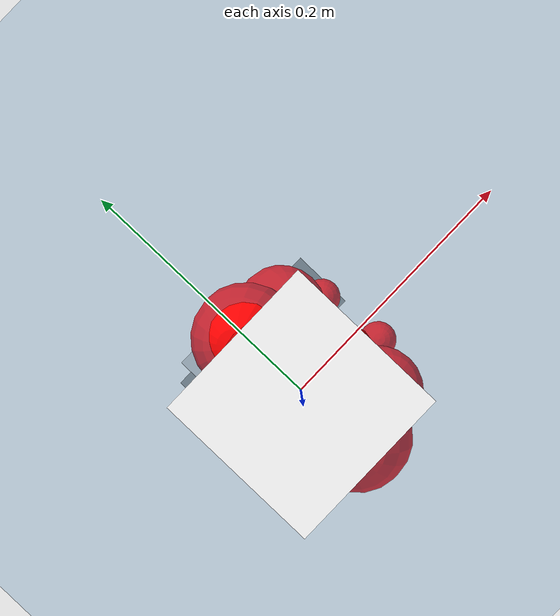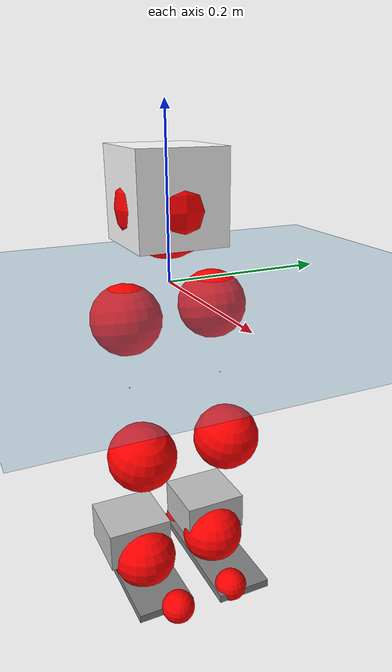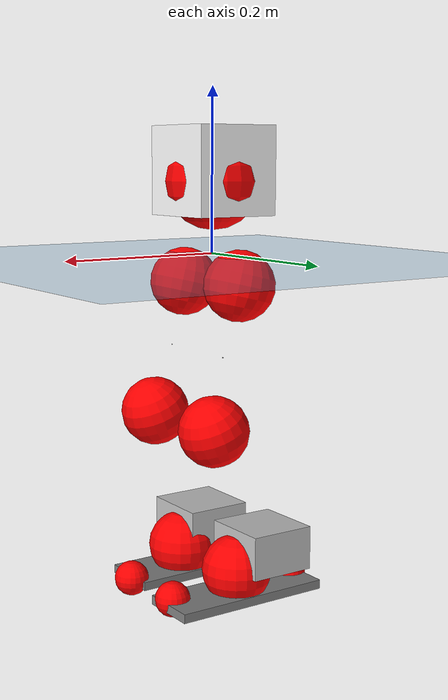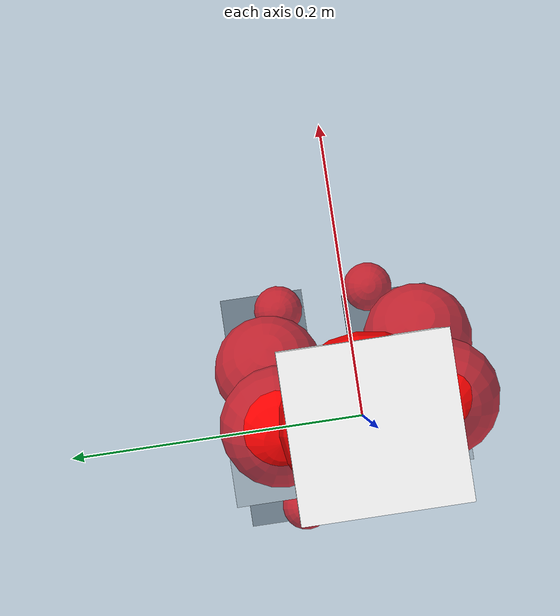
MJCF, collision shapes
<mujoco model="pi_12dof_release_v1">
  <compiler angle="radian" assetdir="assets" balanceinertia="true" inertiafromgeom="false"/>

  <option timestep="0.005" density="1.2" viscosity="2e-05"/>

  <size nkey="1"/>

  <visual>
    <quality shadowsize="8192"/>
    <map shadowclip="0.5"/>
  </visual>

  <default>
    <default class="/">
      <joint armature="0.01" damping="0.01" frictionloss="0.01"/>
      <geom contype="0" conaffinity="0" group="1" solref="-1000 -80"/>
      <site size="0.01 0.005 0.005" group="5"/>
      <general forcelimited="true" biastype="affine" gainprm="20" biasprm="0 -20 -0.5"/>
      <default class="foot">
        <geom size="0.0845 0.036 0.005" type="box" condim="6" group="4" priority="1" friction="0.9 0.2 0.2" solimp="0.015 1 0.005"/>
      </default>
      <default class="reward_collision_sphere">
        <geom group="5" rgba="1 0 0 1"/>
      </default>
    </default>
  </default>

  <asset>
    <texture type="skybox" colorspace="auto" name="//unnamed_texture_0" builtin="gradient" rgb1="0.95 0.95 0.95" rgb2="0.95 0.95 0.95" width="100" height="600"/>
    <texture type="2d" colorspace="auto" name="texplane" builtin="checker" rgb1="0.345 0.575 0.748" rgb2="0.345 0.575 0.748" markrgb="1 1 1" width="512" height="512"/>
    <material name="MatPlane" class="/" texture="texplane" texuniform="true" texrepeat="2 2" specular="0.9"/>
    <mesh name="baselink_1" class="/" file="baselink_1.STL"/>
    <mesh name="r_hip_pitch_link" class="/" file="r_hip_pitch_link.STL"/>
    <mesh name="r_hip_roll_link" class="/" file="r_hip_roll_link.STL"/>
    <mesh name="r_thigh_link" class="/" file="r_thigh_link.STL"/>
    <mesh name="r_calf_link" class="/" file="r_calf_link.STL"/>
    <mesh name="r_ankle_pitch_link" class="/" file="r_ankle_pitch_link.STL"/>
    <mesh name="r_ankle_roll_link" class="/" file="r_ankle_roll_link.STL"/>
    <mesh name="l_hip_pitch_link" class="/" file="l_hip_pitch_link.STL"/>
    <mesh name="l_hip_roll_link" class="/" file="l_hip_roll_link.STL"/>
    <mesh name="l_thigh_link" class="/" file="l_thigh_link.STL"/>
    <mesh name="l_calf_link" class="/" file="l_calf_link.STL"/>
    <mesh name="l_ankle_pitch_link" class="/" file="l_ankle_pitch_link.STL"/>
    <mesh name="l_ankle_roll_link" class="/" file="l_ankle_roll_link.STL"/>
  </asset>

  <worldbody>
    <geom name="floor" class="/" size="100 100 0.125" type="plane" group="0" material="MatPlane"/>
    <light name="toplight_shadow" class="/" pos="0 0 5" dir="0.0990148 0.0990148 -0.990148" type="directional" ambient="0.04 0.04 0.04" diffuse="0.55 0.55 0.55" specular="0.12 0.12 0.12"/>
    <light name="toplight_fill" class="/" pos="0 0 5" dir="0.0990148 0.0990148 -0.990148" type="directional" castshadow="false" ambient="0.04 0.04 0.04" diffuse="0.3 0.3 0.3" specular="0.08 0.08 0.08"/>
    <body name="trunk" pos="-0.00167359 -0.000720312 0.000863549" quat="1 -2.46114e-05 -3.82473e-05 -5.93579e-06">
      <inertial pos="0.0111091 0.00475649 0.0499585" quat="0.693312 0.000431522 0.0100153 0.720568" mass="2.48595" diaginertia="0.0361362 0.00130926 0.0127051"/>
      <joint name="//unnamed_joint_0" type="free"/>
      <geom name="//unnamed_geom_1" class="/" type="mesh" density="0" rgba="1 1 1 1" mesh="baselink_1"/>
      <geom name="//unnamed_geom_2" class="/" size="0.0535022 0.0535022 0.0535022" pos="0 0 0.0990288" type="box" rgba="1 1 1 1"/>
      <geom name="//unnamed_geom_3" class="reward_collision_sphere" size="0.0588524" pos="0 0 0.0866502"/>
      <site name="imu" class="/" pos="-0.030377 -0.000906446 0.030113" size="0.0107004"/>
      <camera name="track" class="/" pos="0 -1.35571 0" quat="0.707107 0.707107 0 0" mode="trackcom"/>
      <camera name="ego_camera" class="/" pos="0.0970811 0 0.222815" quat="-0.5 -0.5 0.5 0.5"/>
      <body name="r_hip_pitch_link" pos="0.00325521 -0.0113293 -0.0394226" quat="0.9922 8.40019e-06 -0.124655 -1.05233e-05">
        <inertial pos="0.000518556 -0.0343098 -0.000288758" quat="-0.0201787 0.704332 -0.0277401 0.709041" mass="0.493672" diaginertia="0.00043589 1.62238e-05 0.000263058"/>
        <joint name="r_hip_pitch_joint" class="/" pos="0 0 0" axis="-0.0069302 -0.999955 -0.00648228" range="-1.69651 1.38288" armature="0.0131994" damping="0.0148027" frictionloss="0.0106117"/>
        <geom name="//unnamed_geom_4" class="/" type="mesh" density="0" rgba="0.75294 0.75294 0.75294 1" mesh="r_hip_pitch_link"/>
        <geom name="//unnamed_geom_5" class="/" size="0.000535022 0.000535022 0.000535022" type="box" rgba="0.75294 0.75294 0.75294 1"/>
        <body name="r_hip_roll_link" pos="0.0013158 -0.0450822 -0.000166534" quat="0.999996 -0.00176662 0.00103872 0.00193283">
          <inertial pos="0.00153494 -0.000380701 -0.0770347" quat="0.706462 -0.0644962 -0.0937225 0.698546" mass="0.479591" diaginertia="0.0011907 4.2303e-05 0.000369448"/>
          <joint name="r_hip_roll_joint" class="/" pos="0 0 0" axis="-0.999871 0.0154961 -0.00412772" range="-0.0721903 0.505132" armature="0.0117717" damping="0.0371242" frictionloss="0.00722995"/>
          <geom name="//unnamed_geom_6" class="/" type="mesh" density="0" rgba="0.75294 0.75294 0.75294 1" mesh="r_hip_roll_link"/>
          <geom name="//unnamed_geom_7" class="/" size="0.000535022 0.000535022 0.000535022" type="box" rgba="0.75294 0.75294 0.75294 1"/>
          <geom name="//unnamed_geom_8" class="reward_collision_sphere" size="0.0428017"/>
          <body name="r_thigh_link" pos="-0.00535804 -0.00517048 -0.0816686" quat="0.999999 0.000565373 0.000800898 -0.000243572">
            <inertial pos="0.00193964 0.00349458 -0.0585831" quat="0.738089 0.674697 -0.000555751 -0.00301501" mass="0.133895" diaginertia="0.000466085 1.35322e-05 0.000167885"/>
            <joint name="r_thigh_joint" class="/" pos="0 0 0" axis="0.00103539 0.00622452 -0.99998" range="-0.24337 0.531936" armature="0.00703029" damping="0" frictionloss="0.0103527"/>
            <geom name="//unnamed_geom_9" class="/" type="mesh" density="0" rgba="0.75294 0.75294 0.75294 1" mesh="r_thigh_link"/>
            <geom name="//unnamed_geom_10" class="/" size="0.000535022 0.000535022 0.000535022" type="box" rgba="0.75294 0.75294 0.75294 1"/>
            <body name="r_calf_link" pos="0.00630682 0.00283682 -0.0860416" quat="0.94762 0.000191989 0.319401 0.000202112">
              <inertial pos="0.00150364 0.00747523 -0.0841425" quat="0.999189 -0.000291213 -0.0091268 0.0392286" mass="0.998989" diaginertia="0.0137934 0.000476617 0.000543355"/>
              <joint name="r_calf_joint" class="/" pos="0 0 0" axis="-0.0099096 -0.999884 0.011562" stiffness="0.00892045" range="-1.64984 0.652829" armature="0.0109801" damping="0" frictionloss="0.011777"/>
              <geom name="//unnamed_geom_11" class="/" type="mesh" density="0" rgba="0.75294 0.75294 0.75294 1" mesh="r_calf_link"/>
              <geom name="//unnamed_geom_12" class="/" size="0.000535022 0.000535022 0.000535022" type="box" rgba="0.75294 0.75294 0.75294 1"/>
              <geom name="//unnamed_geom_13" class="reward_collision_sphere" size="0.0428017"/>
              <body name="r_ankle_pitch_link" pos="-0.0024454 0.00222054 -0.168954" quat="0.980115 -0.00219819 -0.198419 0.000449583">
                <inertial pos="-0.000114802 0.00136013 0.00118735" quat="-0.0025407 0.702875 -0.00231718 0.711305" mass="0.199885" diaginertia="0.00111505 3.26038e-05 0.000312941"/>
                <joint name="r_ankle_pitch_joint" class="/" pos="0 0 0" axis="0.0125047 -0.99992 -0.00186865" stiffness="0.012613" range="-1.40152 0.455163" armature="0.00972724" damping="0.0289278" frictionloss="0.00954597"/>
                <geom name="//unnamed_geom_14" class="/" type="mesh" density="0" rgba="0.75294 0.75294 0.75294 1" mesh="r_ankle_pitch_link"/>
                <geom name="//unnamed_geom_15" class="/" size="0.0417317 0.0428017 0.0267511" type="box" rgba="0.75294 0.75294 0.75294 1"/>
                <body name="r_ankle_roll_link" pos="0.0986182 0.00680013 0.000185073" quat="1 -4.31853e-06 -0.000554123 0.000402732">
                  <inertial pos="-0.0274189 -0.000243832 -0.018288" quat="0.540731 0.438755 0.418999 0.582703" mass="0.594467" diaginertia="0.00393163 0.000140987 0.000780459"/>
                  <joint name="r_ankle_roll_joint" class="/" pos="0 0 0" axis="-0.999988 -0.00304779 0.00391091" range="-0.196269 0.172854" armature="0.00719662" damping="0" frictionloss="0.0115697"/>
                  <geom name="//unnamed_geom_16" class="/" type="mesh" density="0" rgba="0.75294 0.75294 0.75294 1" mesh="r_ankle_roll_link"/>
                  <geom name="//unnamed_geom_17" class="/" type="mesh" rgba="0.75294 0.75294 0.75294 1" mesh="r_ankle_roll_link"/>
                  <geom name="right_foot" class="foot" size="0.0811617 0.0374094 0.00532156" pos="-0.0660151 0 -0.0544659"/>
                  <geom name="//unnamed_geom_19" class="reward_collision_sphere" size="0.0428017" pos="-0.0647207 0 -0.0247572"/>
                  <geom name="//unnamed_geom_20" class="reward_collision_sphere" size="0.0214009" pos="0.0194162 0.0135571 -0.0495144"/>
                  <geom name="//unnamed_geom_21" class="reward_collision_sphere" size="0.0214009" pos="-0.15533 0.0135571 -0.0495144"/>
                  <site name="right_foot" class="foot" pos="-0.0660151 0 -0.0544659" size="0.0107004"/>
                </body>
              </body>
            </body>
          </body>
        </body>
      </body>
      <body name="l_hip_pitch_link" pos="-0.00510735 0.0187788 -0.0356129" quat="0.99219 5.4094e-05 -0.124738 3.11013e-06">
        <inertial pos="0.0019846 0.0341554 0.00650882" quat="-0.0450387 0.698145 0.045462 0.713091" mass="0.438857" diaginertia="0.000384698 1.34933e-05 0.000272505"/>
        <joint name="l_hip_pitch_joint" class="/" pos="0 0 0" axis="-0.00395557 0.999992 0.000291086" stiffness="0.0101895" range="-1.19738 1.76665" armature="0.0114625" damping="0" frictionloss="0.0119728"/>
        <geom name="//unnamed_geom_22" class="/" type="mesh" density="0" rgba="0.75294 0.75294 0.75294 1" mesh="l_hip_pitch_link"/>
        <geom name="//unnamed_geom_23" class="/" size="0.000535022 0.000535022 0.000535022" type="box" rgba="0.75294 0.75294 0.75294 1"/>
        <body name="l_hip_roll_link" pos="0.00605696 0.0382044 -0.00103751" quat="1 3.22677e-05 -1.93893e-05 2.82926e-05">
          <inertial pos="0.00540783 0.00116927 -0.06863" quat="0.69926 -0.075782 -0.0785531 0.706485" mass="0.490623" diaginertia="0.00136898 3.96956e-05 0.000389568"/>
          <joint name="l_hip_roll_joint" class="/" pos="0 0 0" axis="-0.999926 -0.0116368 -0.00344643" range="-0.483915 0.0690127" armature="0.00982924" damping="0" frictionloss="0.011389"/>
          <geom name="//unnamed_geom_24" class="/" type="mesh" density="0" rgba="0.75294 0.75294 0.75294 1" mesh="l_hip_roll_link"/>
          <geom name="//unnamed_geom_25" class="/" size="0.000535022 0.000535022 0.000535022" type="box" rgba="0.75294 0.75294 0.75294 1"/>
          <geom name="//unnamed_geom_26" class="reward_collision_sphere" size="0.0428017"/>
          <body name="l_thigh_link" pos="0.00206811 0.000233752 -0.0869372" quat="1 0.000470672 0.000262012 -0.00030404">
            <inertial pos="-0.000698885 -0.00600307 -0.0601622" quat="0.671429 0.741026 0.0033484 -0.00726313" mass="0.124993" diaginertia="0.000420719 1.1428e-05 0.000153676"/>
            <joint name="l_thigh_joint" class="/" pos="0 0 0" axis="-0.00342885 0.00237819 -0.999991" stiffness="0.0224721" range="-0.473176 0.33139" armature="0.0111885" damping="0" frictionloss="0.0109266"/>
            <geom name="//unnamed_geom_27" class="/" type="mesh" density="0" rgba="0.75294 0.75294 0.75294 1" mesh="l_thigh_link"/>
            <geom name="//unnamed_geom_28" class="/" size="0.000535022 0.000535022 0.000535022" type="box" rgba="0.75294 0.75294 0.75294 1"/>
            <body name="l_calf_link" pos="-0.00794839 0.00227125 -0.087861" quat="0.947906 0.00041467 0.318546 0.00142038">
              <inertial pos="0.00183139 0.00123157 -0.0797012" quat="0.99892 0.0302897 -0.0182491 0.0301264" mass="1.03239" diaginertia="0.0138857 0.000551266 0.000560135"/>
              <joint name="l_calf_joint" class="/" pos="0 0 0" axis="0.00776909 0.99979 -0.0189425" stiffness="0.0065121" range="-0.64769 1.66818" armature="0.0101952" damping="0.0229018" frictionloss="0.0110546"/>
              <geom name="//unnamed_geom_29" class="/" type="mesh" density="0" rgba="0.75294 0.75294 0.75294 1" mesh="l_calf_link"/>
              <geom name="//unnamed_geom_30" class="/" size="0.000535022 0.000535022 0.000535022" type="box" rgba="0.75294 0.75294 0.75294 1"/>
              <geom name="//unnamed_geom_31" class="reward_collision_sphere" size="0.0428017"/>
              <body name="l_ankle_pitch_link" pos="-0.00685711 0.00144026 -0.167553" quat="0.979975 0.00220633 -0.199109 1.90605e-05">
                <inertial pos="0.00718156 -0.00203267 0.00168727" quat="0.000479401 0.708178 0.00414769 0.706022" mass="0.230043" diaginertia="0.00119453 3.16763e-05 0.000346584"/>
                <joint name="l_ankle_pitch_joint" class="/" pos="0 0 0" axis="-9.07916e-05 0.999986 0.00520443" range="-0.49031 1.34685" armature="0.0117555" damping="0.00452301" frictionloss="0.0107986"/>
                <geom name="//unnamed_geom_32" class="/" type="mesh" density="0" rgba="0.75294 0.75294 0.75294 1" mesh="l_ankle_pitch_link"/>
                <geom name="//unnamed_geom_33" class="/" size="0.0417317 0.0428017 0.0267511" type="box" rgba="0.75294 0.75294 0.75294 1"/>
                <body name="l_ankle_roll_link" pos="0.100245 -0.00389826 -0.0013402" quat="0.999995 -0.000391598 0.00184338 -0.00236179">
                  <inertial pos="-0.0353968 -6.3099e-05 -0.0167598" quat="0.55521 0.41841 0.444807 0.564643" mass="0.614405" diaginertia="0.00409323 0.000147349 0.000821021"/>
                  <joint name="l_ankle_roll_joint" class="/" pos="0 0 0" axis="-0.999999 -0.000197474 0.00119154" stiffness="0.0289155" range="-0.248307 0.204239" armature="0.00840276" damping="0" frictionloss="0.0106306"/>
                  <geom name="//unnamed_geom_34" class="/" type="mesh" density="0" rgba="0.75294 0.75294 0.75294 1" mesh="l_ankle_roll_link"/>
                  <geom name="//unnamed_geom_35" class="/" type="mesh" rgba="0.75294 0.75294 0.75294 1" mesh="l_ankle_roll_link"/>
                  <geom name="left_foot" class="foot" size="0.100804 0.0362616 0.00555833" pos="-0.0660151 0 -0.0544659"/>
                  <geom name="//unnamed_geom_37" class="reward_collision_sphere" size="0.0428017" pos="-0.0647207 0 -0.0247572"/>
                  <geom name="//unnamed_geom_38" class="reward_collision_sphere" size="0.0214009" pos="0.0194162 -0.0135571 -0.0495144"/>
                  <geom name="//unnamed_geom_39" class="reward_collision_sphere" size="0.0214009" pos="-0.15533 -0.0135571 -0.0495144"/>
                  <site name="left_foot" class="foot" pos="-0.0660151 0 -0.0544659" size="0.0107004"/>
                </body>
              </body>
            </body>
          </body>
        </body>
      </body>
    </body>
  </worldbody>

  <contact>
    <pair class="/" geom1="floor" geom2="right_foot" name="//unnamed_contact_1"/>
    <pair class="/" geom1="floor" geom2="left_foot" name="//unnamed_contact_0"/>
  </contact>

  <actuator>
    <general name="r_hip_pitch_joint" class="/" joint="r_hip_pitch_joint" forcerange="-19.1339 19.1339" gainprm="25.7828" biasprm="0 -25.7828 -0.5774"/>
    <general name="r_hip_roll_joint" class="/" joint="r_hip_roll_joint" forcerange="-21.9262 21.9262" gainprm="25.7828" biasprm="0 -25.7828 -0.5774"/>
    <general name="r_thigh_joint" class="/" joint="r_thigh_joint" forcerange="-24.2829 24.2829" gainprm="25.7828" biasprm="0 -25.7828 -0.5774"/>
    <general name="r_calf_joint" class="/" joint="r_calf_joint" forcerange="-17.5388 17.5388" gainprm="25.7828" biasprm="0 -25.7828 -0.5774"/>
    <general name="r_ankle_pitch_joint" class="/" joint="r_ankle_pitch_joint" forcerange="-24.1818 24.1818" gainprm="25.7828" biasprm="0 -25.7828 -0.5774"/>
    <general name="r_ankle_roll_joint" class="/" joint="r_ankle_roll_joint" forcerange="-20.5019 20.5019" gainprm="25.7828" biasprm="0 -25.7828 -0.5774"/>
    <general name="l_hip_pitch_joint" class="/" joint="l_hip_pitch_joint" forcerange="-25.608 25.608" gainprm="25.7828" biasprm="0 -25.7828 -0.5774"/>
    <general name="l_hip_roll_joint" class="/" joint="l_hip_roll_joint" forcerange="-28.0431 28.0431" gainprm="25.7828" biasprm="0 -25.7828 -0.5774"/>
    <general name="l_thigh_joint" class="/" joint="l_thigh_joint" forcerange="-21.6246 21.6246" gainprm="25.7828" biasprm="0 -25.7828 -0.5774"/>
    <general name="l_calf_joint" class="/" joint="l_calf_joint" forcerange="-23.2203 23.2203" gainprm="25.7828" biasprm="0 -25.7828 -0.5774"/>
    <general name="l_ankle_pitch_joint" class="/" joint="l_ankle_pitch_joint" forcerange="-20.0909 20.0909" gainprm="25.7828" biasprm="0 -25.7828 -0.5774"/>
    <general name="l_ankle_roll_joint" class="/" joint="l_ankle_roll_joint" forcerange="-20.597 20.597" gainprm="25.7828" biasprm="0 -25.7828 -0.5774"/>
  </actuator>

  <sensor>
    <gyro site="imu" name="imu_angular_velocity"/>
    <velocimeter site="imu" name="imu_linear_velocity"/>
    <framelinvel objtype="site" objname="left_foot" name="left_foot_global_linear_velocity"/>
    <framelinvel objtype="site" objname="right_foot" name="right_foot_global_linear_velocity"/>
  </sensor>

  <keyframe>
    <key name="home" qpos="0 0 0.291 1 0 0 0 0.4 0 0 -0.8 0.4 0 -0.4 0 0 0.8 -0.4 0"/>
  </keyframe>
</mujoco>
